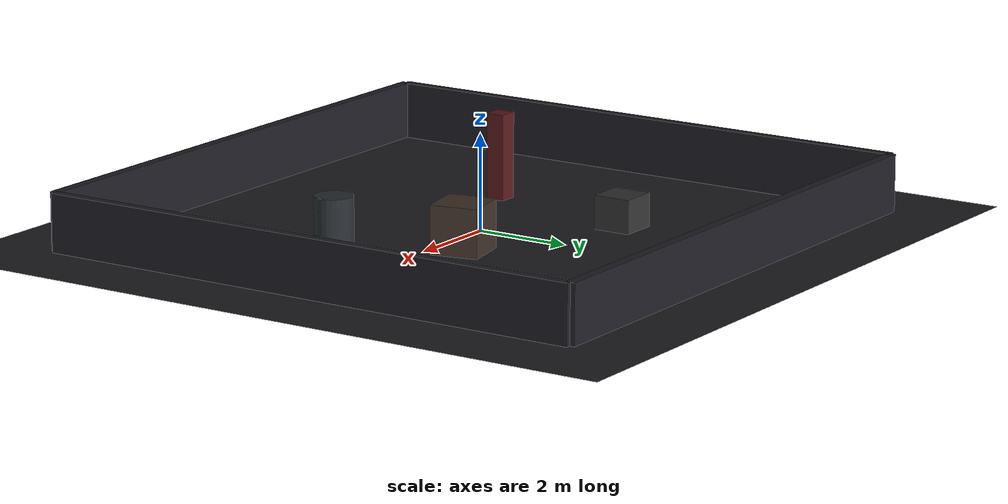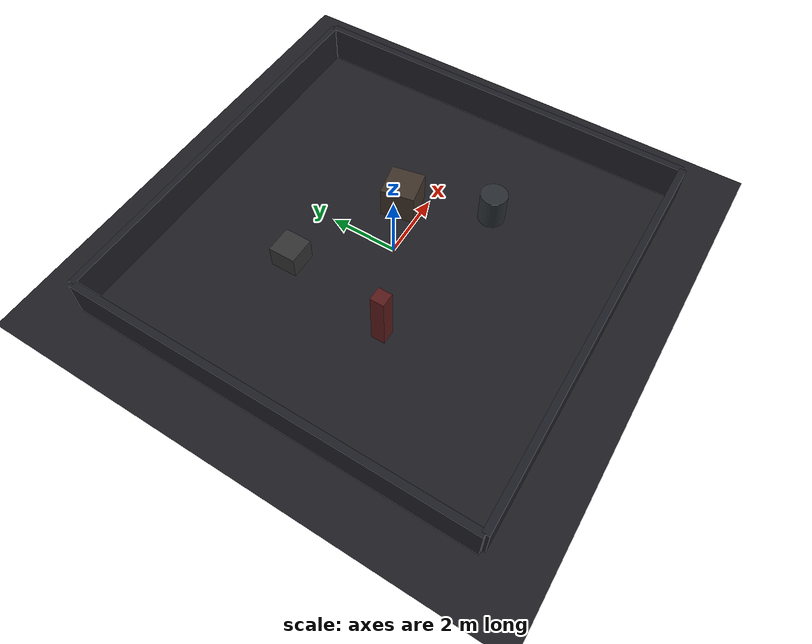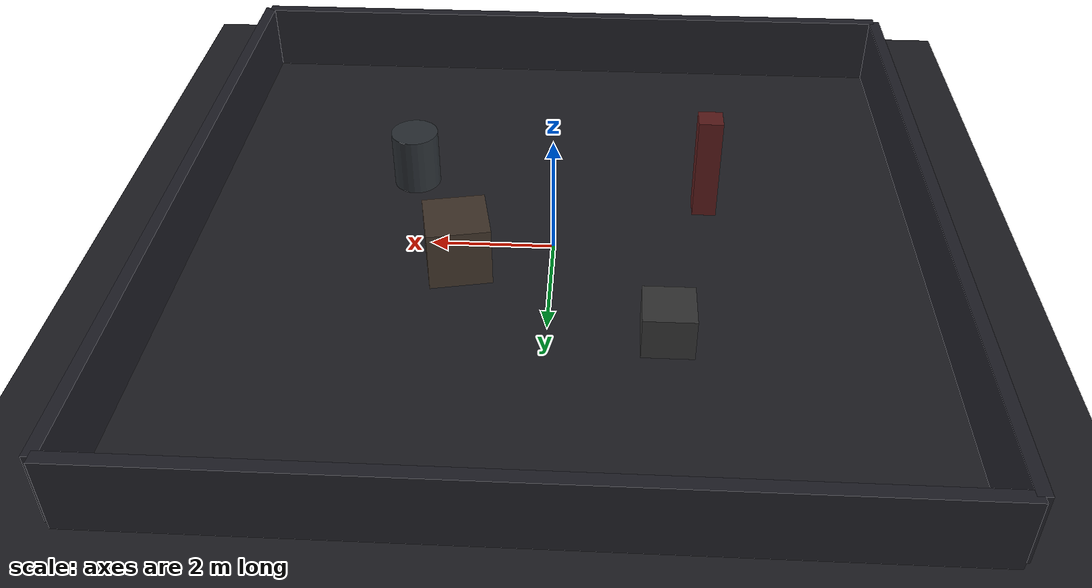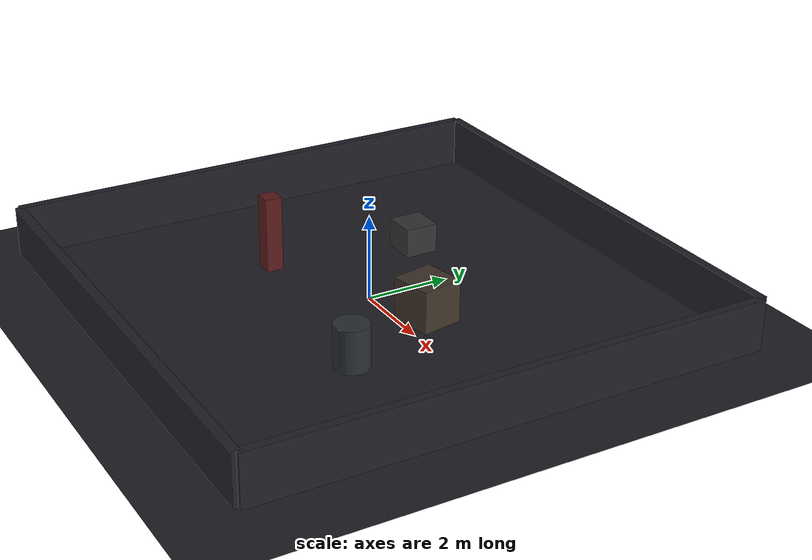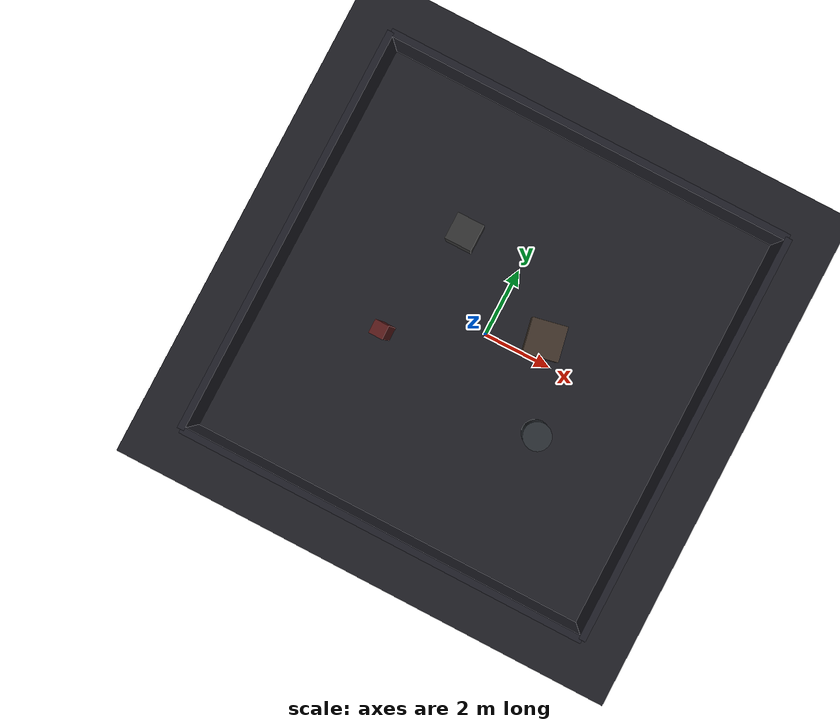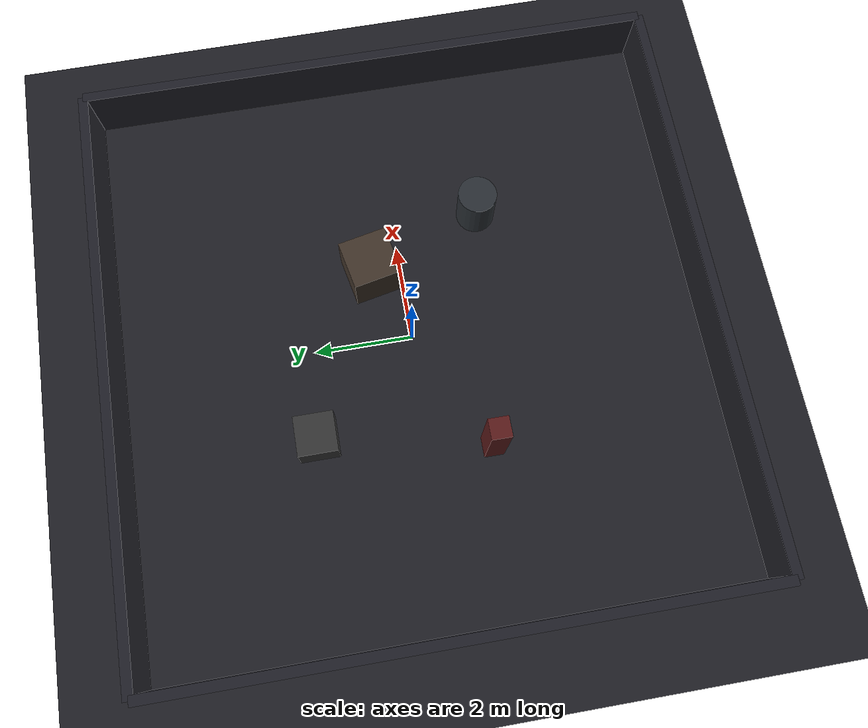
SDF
<sdf version="1.7">
  <world name="night_world">
    <gravity>0 0 -9.8</gravity>

    <scene>
      <ambient>0.02 0.02 0.03 1</ambient>
      <background>0.01 0.01 0.03 1</background>
      <shadows>true</shadows>
    </scene>

    <light type="directional" name="moon_light">
      <cast_shadows>true</cast_shadows>
      <pose>0 0 20 0 0 0</pose>
      <diffuse>0.18 0.2 0.25 1</diffuse>
      <specular>0.06 0.06 0.08 1</specular>
      <direction>-0.4 0.1 -1.0</direction>
      <attenuation>
        <range>200</range>
        <constant>0.4</constant>
        <linear>0.01</linear>
        <quadratic>0.001</quadratic>
      </attenuation>
    </light>

    <light type="point" name="lamp_north">
      <pose>3.0 3.0 3.0 0 0 0</pose>
      <diffuse>0.28 0.24 0.2 1</diffuse>
      <specular>0.05 0.05 0.05 1</specular>
      <attenuation>
        <range>12</range>
        <constant>0.6</constant>
        <linear>0.08</linear>
        <quadratic>0.01</quadratic>
      </attenuation>
    </light>

    <light type="point" name="lamp_south">
      <pose>-3.2 -2.5 2.8 0 0 0</pose>
      <diffuse>0.2 0.22 0.28 1</diffuse>
      <specular>0.05 0.05 0.05 1</specular>
      <attenuation>
        <range>10</range>
        <constant>0.6</constant>
        <linear>0.09</linear>
        <quadratic>0.012</quadratic>
      </attenuation>
    </light>

    <model name="ground_plane">
      <static>true</static>
      <link name="ground_link">
        <collision name="ground_collision">
          <geometry>
            <plane>
              <normal>0 0 1</normal>
              <size>40 40</size>
            </plane>
          </geometry>
        </collision>
        <visual name="ground_visual">
          <geometry>
            <plane>
              <normal>0 0 1</normal>
              <size>40 40</size>
            </plane>
          </geometry>
          <material>
            <ambient>0.08 0.08 0.09 1</ambient>
            <diffuse>0.12 0.12 0.14 1</diffuse>
            <specular>0.01 0.01 0.01 1</specular>
          </material>
        </visual>
      </link>
    </model>

    <model name="perimeter_wall_north">
      <static>true</static>
      <pose>0 6 0.6 0 0 0</pose>
      <link name="link">
        <collision name="collision">
          <geometry>
            <box>
              <size>12 0.2 1.2</size>
            </box>
          </geometry>
        </collision>
        <visual name="visual">
          <geometry>
            <box>
              <size>12 0.2 1.2</size>
            </box>
          </geometry>
          <material>
            <ambient>0.08 0.08 0.1 1</ambient>
            <diffuse>0.12 0.12 0.15 1</diffuse>
          </material>
        </visual>
      </link>
    </model>

    <model name="perimeter_wall_south">
      <static>true</static>
      <pose>0 -6 0.6 0 0 0</pose>
      <link name="link">
        <collision name="collision">
          <geometry>
            <box>
              <size>12 0.2 1.2</size>
            </box>
          </geometry>
        </collision>
        <visual name="visual">
          <geometry>
            <box>
              <size>12 0.2 1.2</size>
            </box>
          </geometry>
          <material>
            <ambient>0.08 0.08 0.1 1</ambient>
            <diffuse>0.12 0.12 0.15 1</diffuse>
          </material>
        </visual>
      </link>
    </model>

    <model name="perimeter_wall_east">
      <static>true</static>
      <pose>6 0 0.6 0 0 1.5708</pose>
      <link name="link">
        <collision name="collision">
          <geometry>
            <box>
              <size>12 0.2 1.2</size>
            </box>
          </geometry>
        </collision>
        <visual name="visual">
          <geometry>
            <box>
              <size>12 0.2 1.2</size>
            </box>
          </geometry>
          <material>
            <ambient>0.08 0.08 0.1 1</ambient>
            <diffuse>0.12 0.12 0.15 1</diffuse>
          </material>
        </visual>
      </link>
    </model>

    <model name="perimeter_wall_west">
      <static>true</static>
      <pose>-6 0 0.6 0 0 1.5708</pose>
      <link name="link">
        <collision name="collision">
          <geometry>
            <box>
              <size>12 0.2 1.2</size>
            </box>
          </geometry>
        </collision>
        <visual name="visual">
          <geometry>
            <box>
              <size>12 0.2 1.2</size>
            </box>
          </geometry>
          <material>
            <ambient>0.08 0.08 0.1 1</ambient>
            <diffuse>0.12 0.12 0.15 1</diffuse>
          </material>
        </visual>
      </link>
    </model>

    <model name="obstacle_crate_1">
      <static>true</static>
      <pose>1.5 0.6 0.5 0 0 0.2</pose>
      <link name="link">
        <collision name="collision">
          <geometry>
            <box>
              <size>1.0 1.0 1.0</size>
            </box>
          </geometry>
        </collision>
        <visual name="visual">
          <geometry>
            <box>
              <size>1.0 1.0 1.0</size>
            </box>
          </geometry>
          <material>
            <ambient>0.15 0.12 0.1 1</ambient>
            <diffuse>0.25 0.2 0.16 1</diffuse>
          </material>
        </visual>
      </link>
    </model>

    <model name="obstacle_crate_2">
      <static>true</static>
      <pose>-1.8 2.2 0.35 0 0 0</pose>
      <link name="link">
        <collision name="collision">
          <geometry>
            <box>
              <size>0.8 0.8 0.7</size>
            </box>
          </geometry>
        </collision>
        <visual name="visual">
          <geometry>
            <box>
              <size>0.8 0.8 0.7</size>
            </box>
          </geometry>
          <material>
            <ambient>0.12 0.12 0.12 1</ambient>
            <diffuse>0.2 0.2 0.2 1</diffuse>
          </material>
        </visual>
      </link>
    </model>

    <model name="obstacle_barrel_1">
      <static>true</static>
      <pose>2.5 -1.8 0.5 0 0 0</pose>
      <link name="link">
        <collision name="collision">
          <geometry>
            <cylinder>
              <radius>0.4</radius>
              <length>1.0</length>
            </cylinder>
          </geometry>
        </collision>
        <visual name="visual">
          <geometry>
            <cylinder>
              <radius>0.4</radius>
              <length>1.0</length>
            </cylinder>
          </geometry>
          <material>
            <ambient>0.1 0.12 0.14 1</ambient>
            <diffuse>0.16 0.18 0.2 1</diffuse>
          </material>
        </visual>
      </link>
    </model>

    <model name="intruder_target_1">
      <static>true</static>
      <pose>-2.5 -1.2 0.9 0 0 0</pose>
      <link name="link">
        <visual name="visual">
          <geometry>
            <box>
              <size>0.4 0.4 1.8</size>
            </box>
          </geometry>
          <material>
            <ambient>0.22 0.05 0.05 1</ambient>
            <diffuse>0.35 0.1 0.1 1</diffuse>
            <emissive>0.08 0 0 1</emissive>
          </material>
        </visual>
      </link>
    </model>

  </world>
</sdf>
